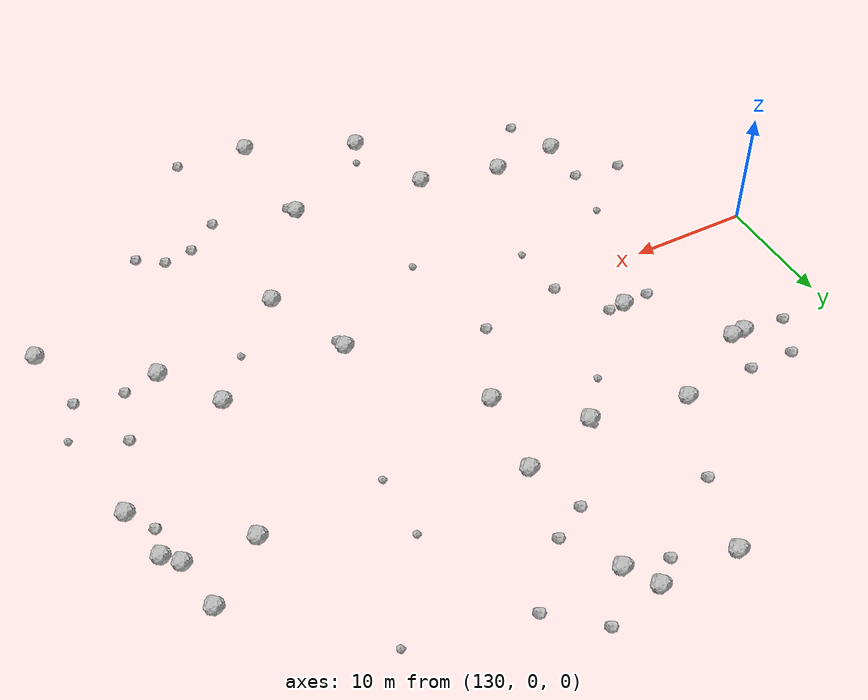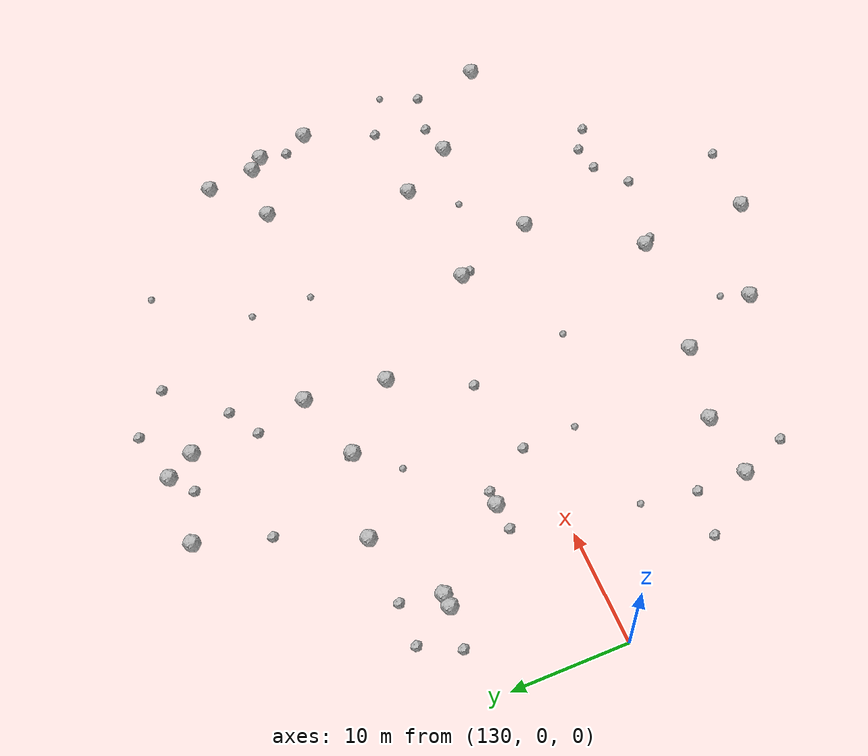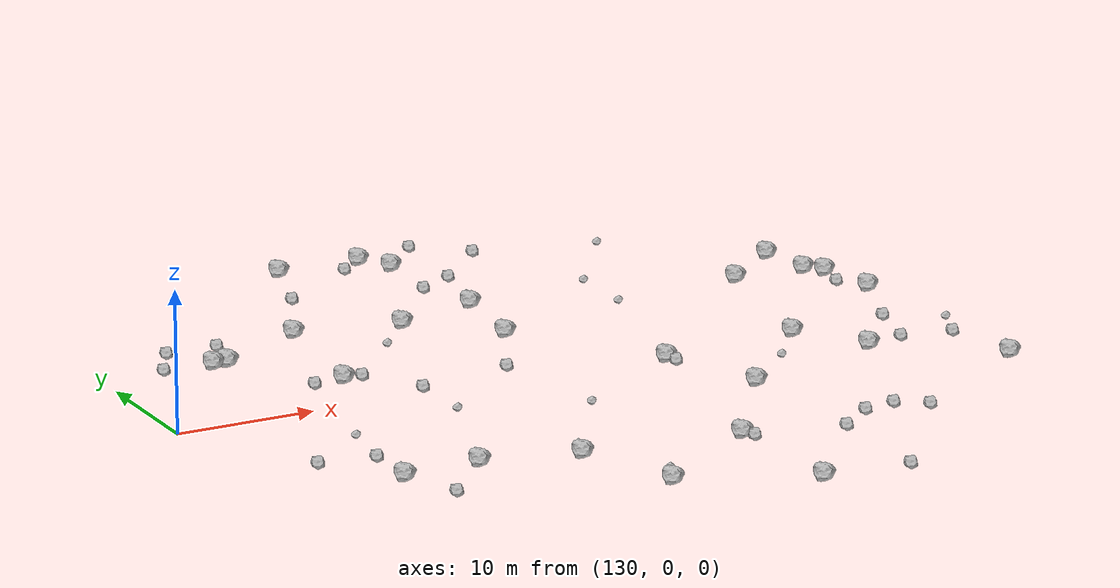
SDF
<sdf version="1.6">
 <world name="default">
  <include><uri>model://sun</uri></include>
  <model name="rock1_4_1">
   <include><uri>model://rock1</uri><pose>179.91414801192687 -5.3894108940352545 0.5 0 0 0</pose></include>
  </model>
  <model name="rock1_4_2">
   <include><uri>model://rock1</uri><pose>139.1758625868776 11.67006949559292 0.5 0 0 0</pose></include>
  </model>
  <model name="rock1_4_3">
   <include><uri>model://rock1</uri><pose>139.3304758950932 -15.142645002017467 0.5 0 0 0</pose></include>
  </model>
  <model name="rock1_4_4">
   <include><uri>model://rock1</uri><pose>159.83755426818792 15.722075507404405 0.5 0 0 0</pose></include>
  </model>
  <model name="rock1_4_5">
   <include><uri>model://rock1</uri><pose>145.90403093894164 15.332981192455925 0.5 0 0 0</pose></include>
  </model>
  <model name="rock1_4_6">
   <include><uri>model://rock1</uri><pose>187.55833452621658 -11.471784760983692 0.5 0 0 0</pose></include>
  </model>
  <model name="rock1_4_7">
   <include><uri>model://rock1</uri><pose>158.9531393034359 8.661060659106361 0.5 0 0 0</pose></include>
  </model>
  <model name="rock1_4_8">
   <include><uri>model://rock1</uri><pose>144.94911970748322 -14.793698115881126 0.5 0 0 0</pose></include>
  </model>
  <model name="rock1_4_9">
   <include><uri>model://rock1</uri><pose>184.5474390055753 11.796569045724866 0.5 0 0 0</pose></include>
  </model>
  <model name="rock1_4_10">
   <include><uri>model://rock1</uri><pose>158.70291823577526 25.972919924327563 0.5 0 0 0</pose></include>
  </model>
  <model name="rock1_4_11">
   <include><uri>model://rock1</uri><pose>151.0035309197864 28.439656052479876 0.5 0 0 0</pose></include>
  </model>
  <model name="rock1_4_12">
   <include><uri>model://rock1</uri><pose>169.10018468556706 -8.779906261867808 0.5 0 0 0</pose></include>
  </model>
  <model name="rock1_4_13">
   <include><uri>model://rock1</uri><pose>183.95675062919867 16.083205727536964 0.5 0 0 0</pose></include>
  </model>
  <model name="rock1_4_14">
   <include><uri>model://rock1</uri><pose>176.61701694408504 -0.5127422662945271 0.5 0 0 0</pose></include>
  </model>
  <model name="rock1_4_15">
   <include><uri>model://rock1</uri><pose>186.51548854011438 6.0350606463200975 0.5 0 0 0</pose></include>
  </model>
  <model name="rock1_4_16">
   <include><uri>model://rock1</uri><pose>157.27789453056164 28.370663964729125 0.5 0 0 0</pose></include>
  </model>
  <model name="rock1_4_17">
   <include><uri>model://rock1</uri><pose>144.6429544278956 4.774513276879041 0.5 0 0 0</pose></include>
  </model>
  <model name="rock1_4_18">
   <include><uri>model://rock1</uri><pose>138.06522444957636 11.621278270540422 0.5 0 0 0</pose></include>
  </model>
  <model name="rock1_4_19">
   <include><uri>model://rock1</uri><pose>151.6956569003433 -16.45085944051818 0.5 0 0 0</pose></include>
  </model>
  <model name="rock1_4_20">
   <include><uri>model://rock1</uri><pose>154.4374230023944 -23.783127780097253 0.5 0 0 0</pose></include>
  </model>
  <model name="rock1_4_21">
   <include><uri>model://rock1</uri><pose>162.92592286390664 -17.819783996321352 0.5 0 0 0</pose></include>
  </model>
  <model name="rock1_4_22">
   <include><uri>model://rock1</uri><pose>153.53962911557343 13.785704421169399 0.5 0 0 0</pose></include>
  </model>
  <model name="rock1_4_23">
   <include><uri>model://rock1</uri><pose>166.1870794620763 -1.3984577958864257 0.5 0 0 0</pose></include>
  </model>
  <model name="rock1_4_24">
   <include><uri>model://rock1</uri><pose>163.4285412059931 -27.794389653570807 0.5 0 0 0</pose></include>
  </model>
  <model name="rock1_4_25">
   <include><uri>model://rock1</uri><pose>185.62406763041034 10.630106061796312 0.5 0 0 0</pose></include>
  </model>
  <model name="rock1_4_26">
   <include><uri>model://rock1</uri><pose>179.21432524878895 12.162423947082011 0.5 0 0 0</pose></include>
  </model>
  <model name="rock2_4_0">
   <include><uri>model://rock2</uri><pose>169.62171787503445 -28.232928836494654 0.3 0 0 0</pose></include>
  </model>
  <model name="rock2_4_1">
   <include><uri>model://rock2</uri><pose>165.4017098480511 26.440280051793287 0.3 0 0 0</pose></include>
  </model>
  <model name="rock2_4_2">
   <include><uri>model://rock2</uri><pose>186.46667071620732 -5.526268585387967 0.3 0 0 0</pose></include>
  </model>
  <model name="rock2_4_3">
   <include><uri>model://rock2</uri><pose>140.9174358147517 -19.317387385033896 0.3 0 0 0</pose></include>
  </model>
  <model name="rock2_4_4">
   <include><uri>model://rock2</uri><pose>183.99565671272794 -0.18204196344818868 0.3 0 0 0</pose></include>
  </model>
  <model name="rock2_4_5">
   <include><uri>model://rock2</uri><pose>172.54488746330935 -17.383084787219488 0.3 0 0 0</pose></include>
  </model>
  <model name="rock2_4_6">
   <include><uri>model://rock2</uri><pose>149.03337866450875 22.295379482696006 0.3 0 0 0</pose></include>
  </model>
  <model name="rock2_4_7">
   <include><uri>model://rock2</uri><pose>139.8680348900806 15.136422550747845 0.3 0 0 0</pose></include>
  </model>
  <model name="rock2_4_8">
   <include><uri>model://rock2</uri><pose>174.9694945370282 -16.97420357633306 0.3 0 0 0</pose></include>
  </model>
  <model name="rock2_4_9">
   <include><uri>model://rock2</uri><pose>148.48988544630254 0.6309966717729232 0.3 0 0 0</pose></include>
  </model>
  <model name="rock2_4_10">
   <include><uri>model://rock2</uri><pose>142.28980443885823 4.6021524863584276 0.3 0 0 0</pose></include>
  </model>
  <model name="rock2_4_11">
   <include><uri>model://rock2</uri><pose>134.44330005340203 11.980085358556252 0.3 0 0 0</pose></include>
  </model>
  <model name="rock2_4_12">
   <include><uri>model://rock2</uri><pose>135.35601024136176 -10.238810324253144 0.3 0 0 0</pose></include>
  </model>
  <model name="rock2_4_13">
   <include><uri>model://rock2</uri><pose>182.73753079851576 -4.7876648664021175 0.3 0 0 0</pose></include>
  </model>
  <model name="rock2_4_14">
   <include><uri>model://rock2</uri><pose>185.12770295184475 8.221570956750455 0.3 0 0 0</pose></include>
  </model>
  <model name="rock2_4_15">
   <include><uri>model://rock2</uri><pose>163.3865245883116 -18.53919354259679 0.3 0 0 0</pose></include>
  </model>
  <model name="rock2_4_16">
   <include><uri>model://rock2</uri><pose>155.3462426801994 26.814497572802146 0.3 0 0 0</pose></include>
  </model>
  <model name="rock2_4_17">
   <include><uri>model://rock2</uri><pose>145.93311580505323 4.7607332313561415 0.3 0 0 0</pose></include>
  </model>
  <model name="rock2_4_18">
   <include><uri>model://rock2</uri><pose>139.3650923240512 -10.807365611104974 0.3 0 0 0</pose></include>
  </model>
  <model name="rock2_4_19">
   <include><uri>model://rock2</uri><pose>158.37856930097726 20.285412599403443 0.3 0 0 0</pose></include>
  </model>
  <model name="rock2_4_20">
   <include><uri>model://rock2</uri><pose>169.79316883730053 -19.622838457525326 0.3 0 0 0</pose></include>
  </model>
  <model name="rock2_4_21">
   <include><uri>model://rock2</uri><pose>166.39600658648013 -2.262177697920947 0.3 0 0 0</pose></include>
  </model>
  <model name="rock2_4_22">
   <include><uri>model://rock2</uri><pose>161.14271424158676 21.891598951123875 0.3 0 0 0</pose></include>
  </model>
  <model name="rock2_4_23">
   <include><uri>model://rock2</uri><pose>155.55839250939928 1.995539725710266 0.3 0 0 0</pose></include>
  </model>
  <model name="rock2_4_24">
   <include><uri>model://rock2</uri><pose>136.10841094820273 15.217697084144561 0.3 0 0 0</pose></include>
  </model>
  <model name="rock2_4_25">
   <include><uri>model://rock2</uri><pose>161.8266042088335 29.52753474387864 0.3 0 0 0</pose></include>
  </model>
  <model name="rock2_4_26">
   <include><uri>model://rock2</uri><pose>177.01025806360872 -18.36283860221321 0.3 0 0 0</pose></include>
  </model>
  <model name="rock3_4_0">
   <include><uri>model://rock3</uri><pose>169.3830801307477 11.596842168317991 0.2 0 0 0</pose></include>
  </model>
  <model name="rock3_4_1">
   <include><uri>model://rock3</uri><pose>169.4463922341232 16.956126395985862 0.2 0 0 0</pose></include>
  </model>
  <model name="rock3_4_2">
   <include><uri>model://rock3</uri><pose>140.1729159483933 -6.092283841173099 0.2 0 0 0</pose></include>
  </model>
  <model name="rock3_4_3">
   <include><uri>model://rock3</uri><pose>173.5499346234467 -4.325410897100934 0.2 0 0 0</pose></include>
  </model>
  <model name="rock3_4_4">
   <include><uri>model://rock3</uri><pose>155.39986458660204 -21.5038016698064 0.2 0 0 0</pose></include>
  </model>
  <model name="rock3_4_5">
   <include><uri>model://rock3</uri><pose>150.66163752214788 10.432216415775983 0.2 0 0 0</pose></include>
  </model>
  <model name="rock3_4_6">
   <include><uri>model://rock3</uri><pose>148.6574423820843 -4.209911415826891 0.2 0 0 0</pose></include>
  </model>
  <model name="rock3_4_7">
   <include><uri>model://rock3</uri><pose>187.91671708224078 -2.238343831649953 0.2 0 0 0</pose></include>
  </model>
  <model name="rock3_4_8">
   <include><uri>model://rock3</uri><pose>174.55700025637407 24.522514390471663 0.2 0 0 0</pose></include>
  </model>
  <model name="rock3_4_9">
   <include><uri>model://rock3</uri><pose>157.26824787454592 -7.158183545187335 0.2 0 0 0</pose></include>
  </model>
  <model name="rock3_4_10">
   <include><uri>model://rock3</uri><pose>162.86866302942758 -17.553227098224497 0.2 0 0 0</pose></include>
  </model>
  <model name="rock3_4_11">
   <include><uri>model://rock3</uri><pose>153.3723539641431 14.196233767663252 0.2 0 0 0</pose></include>
  </model>
 </world>
</sdf>
